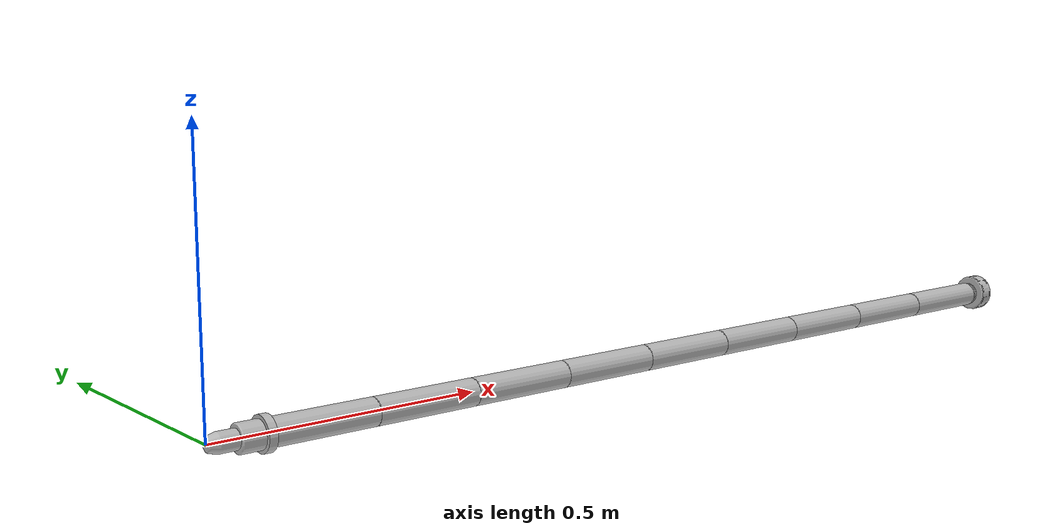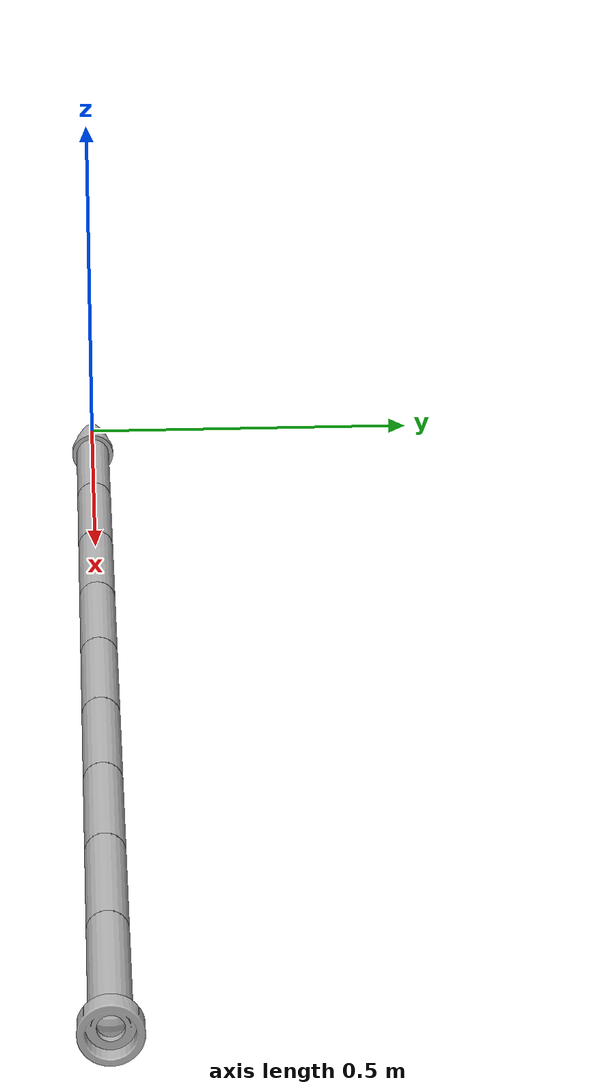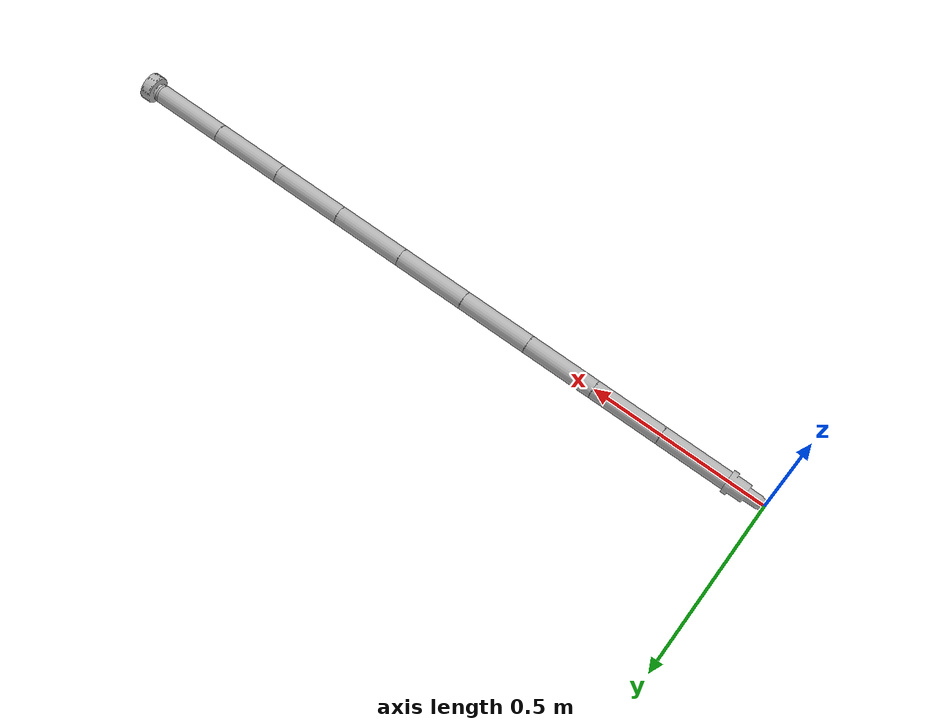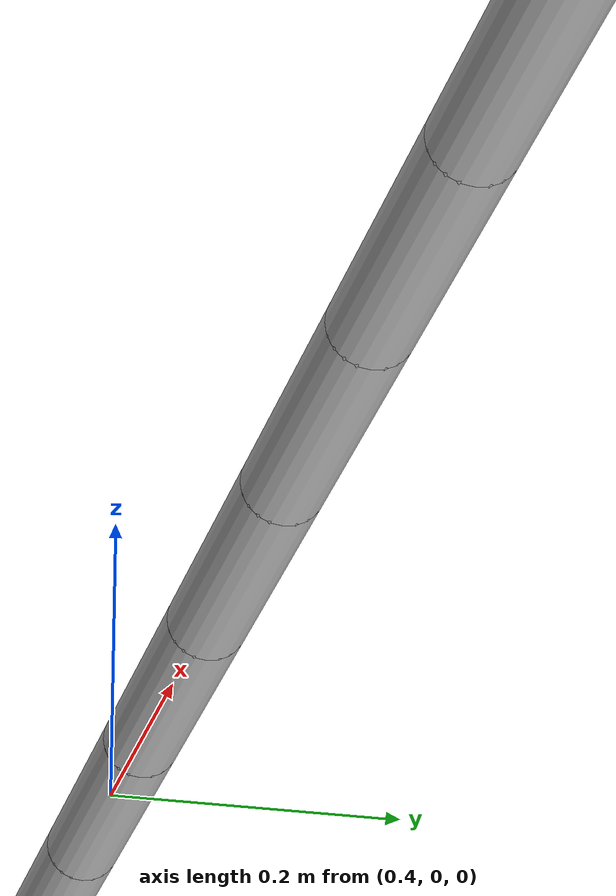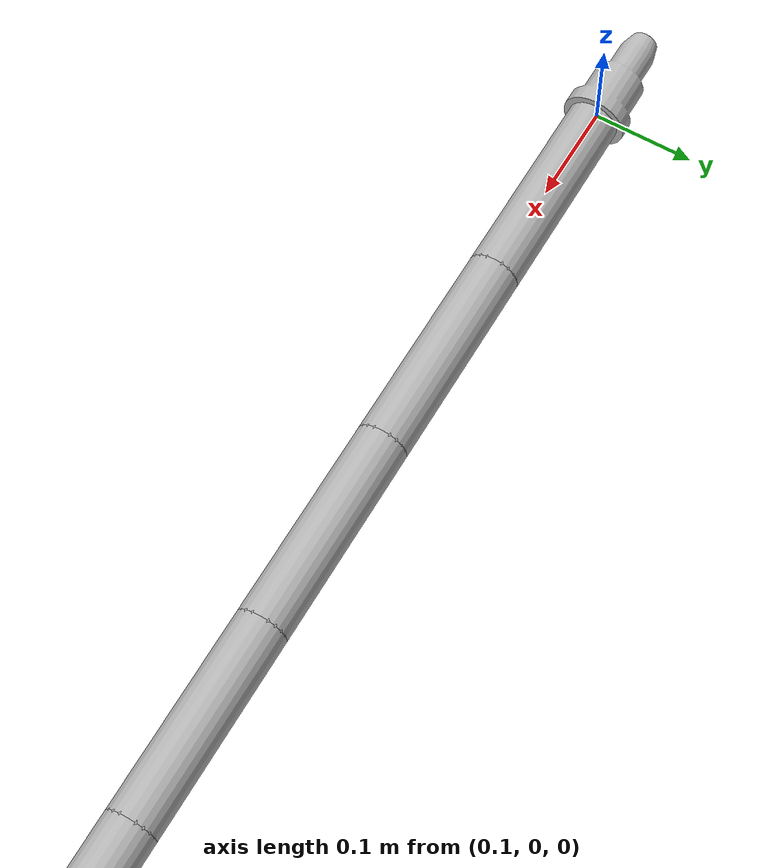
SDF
<sdf version="1.3">
    <model name="fire_hose_long">
        <link name="nozzle">
            <gravity>false</gravity>
            <pose>0.000000 0.000000 0.000000 0.000000 -0.000000 0.000000</pose>
            <inertial>
                <pose>0.000000 0.000000 0.000000 0.000000 -0.000000 0.000000</pose>
                <mass>0.100000</mass>
                <inertia>
                    <ixx>0.010000</ixx>
                    <ixy>0.000000</ixy>
                    <ixz>0.000000</ixz>
                    <iyy>0.010000</iyy>
                    <iyz>0.000000</iyz>
                    <izz>0.010000</izz>
                </inertia>
            </inertial>
            <collision name="nozzle_collision_simple">
                <pose>0.050000 0.000000 0.000000 0.000000 1.570790 0.000000</pose>
                <geometry>
                    <cylinder>
                        <length>0.10</length>
                        <radius>0.03</radius>
                    </cylinder>
                </geometry>
            </collision>
            <visual name="nozzle_vis">
                <pose>-0.000000 0.000000 0.000000 0.000000 -0.000000 0.000000</pose>
                <geometry>
                    <mesh>
                        <scale>0.002540 0.002540 0.002540</scale>
                        <uri>model://fire_hose_long/meshes/nozzle.stl</uri>
                    </mesh>
                </geometry>
            </visual>
            <velocity_decay />
        </link>
        <link name="sphere_01">
            <gravity>false</gravity>
            <pose>0.100000 0.000000 0.000000 0.000000 -0.000000 0.000000</pose>
            <inertial>
                <pose>0.000000 0.000000 0.000000 0.000000 -0.000000 0.000000</pose>
                <mass>0.100000</mass>
                <inertia>
                    <ixx>0.010000</ixx>
                    <ixy>0.000000</ixy>
                    <ixz>0.000000</ixz>
                    <iyy>0.010000</iyy>
                    <iyz>0.000000</iyz>
                    <izz>0.010000</izz>
                </inertia>
            </inertial>
            <collision name="sphere_01_collision">
                <pose>0.000000 0.000000 0.000000 0.000000 -0.000000 0.000000</pose>
                <geometry>
                    <sphere>
                        <radius>0.025000</radius>
                    </sphere>
                </geometry>
            </collision>
            <visual name="sphere_01_vis">
                <pose>0.000000 0.000000 0.000000 0.000000 -0.000000 0.000000</pose>
                <geometry>
                    <sphere>
                        <radius>0.025000</radius>
                    </sphere>
                </geometry>
            </visual>
            <velocity_decay />
        </link>
        <joint name="joint_01_1" type="revolute">
            <child>sphere_01</child>
            <parent>nozzle</parent>
            <axis>
                <xyz>0.000000 0.000000 1.000000</xyz>
                <limit>
                    <lower>-1.570800</lower>
                    <upper>1.570800</upper>
                </limit>
                <dynamics />
            </axis>
        </joint>
        <link name="link_01">
            <gravity>false</gravity>
            <pose>0.100000 0.000000 0.000000 0.000000 -0.000000 0.000000</pose>
            <inertial>
                <pose>0.000000 0.000000 0.000000 0.000000 -0.000000 0.000000</pose>
                <mass>0.100000</mass>
                <inertia>
                    <ixx>0.010000</ixx>
                    <ixy>0.000000</ixy>
                    <ixz>0.000000</ixz>
                    <iyy>0.010000</iyy>
                    <iyz>0.000000</iyz>
                    <izz>0.010000</izz>
                </inertia>
            </inertial>
            <visual name="link_01_vis">
                <pose>0.100000 0.000000 0.000000 0.000000 1.570790 0.000000</pose>
                <geometry>
                    <cylinder>
                        <length>0.200000</length>
                        <radius>0.025000</radius>
                    </cylinder>
                </geometry>
            </visual>
            <velocity_decay />
        </link>
        <joint name="joint_01_2" type="revolute">
            <child>link_01</child>
            <parent>sphere_01</parent>
            <axis>
                <xyz>0.000000 1.000000 0.000000</xyz>
                <limit>
                    <lower>-1.570800</lower>
                    <upper>1.570800</upper>
                </limit>
                <dynamics />
            </axis>
        </joint>
        <link name="sphere_02">
            <gravity>false</gravity>
            <pose>0.300000 0.000000 0.000000 0.000000 -0.000000 0.000000</pose>
            <inertial>
                <pose>0.000000 0.000000 0.000000 0.000000 -0.000000 0.000000</pose>
                <mass>0.100000</mass>
                <inertia>
                    <ixx>0.010000</ixx>
                    <ixy>0.000000</ixy>
                    <ixz>0.000000</ixz>
                    <iyy>0.010000</iyy>
                    <iyz>0.000000</iyz>
                    <izz>0.010000</izz>
                </inertia>
            </inertial>
            <collision name="sphere_02_collision">
                <pose>0.000000 0.000000 0.000000 0.000000 -0.000000 0.000000</pose>
                <geometry>
                    <sphere>
                        <radius>0.025000</radius>
                    </sphere>
                </geometry>
            </collision>
            <visual name="sphere_02_vis">
                <pose>0.000000 0.000000 0.000000 0.000000 -0.000000 0.000000</pose>
                <geometry>
                    <sphere>
                        <radius>0.025000</radius>
                    </sphere>
                </geometry>
            </visual>
            <velocity_decay />
        </link>
        <joint name="joint_02_1" type="revolute">
            <child>sphere_02</child>
            <parent>link_01</parent>
            <axis>
                <xyz>0.000000 0.000000 1.000000</xyz>
                <limit>
                    <lower>-1.570800</lower>
                    <upper>1.570800</upper>
                </limit>
                <dynamics />
            </axis>
        </joint>
        <link name="link_02">
            <gravity>false</gravity>
            <pose>0.300000 0.000000 0.000000 0.000000 -0.000000 0.000000</pose>
            <inertial>
                <pose>0.000000 0.000000 0.000000 0.000000 -0.000000 0.000000</pose>
                <mass>0.100000</mass>
                <inertia>
                    <ixx>0.010000</ixx>
                    <ixy>0.000000</ixy>
                    <ixz>0.000000</ixz>
                    <iyy>0.010000</iyy>
                    <iyz>0.000000</iyz>
                    <izz>0.010000</izz>
                </inertia>
            </inertial>
            <visual name="link_02_vis">
                <pose>0.100000 0.000000 0.000000 0.000000 1.570790 0.000000</pose>
                <geometry>
                    <cylinder>
                        <length>0.200000</length>
                        <radius>0.025000</radius>
                    </cylinder>
                </geometry>
            </visual>
            <velocity_decay />
        </link>
        <joint name="joint_02_2" type="revolute">
            <child>link_02</child>
            <parent>sphere_02</parent>
            <axis>
                <xyz>0.000000 1.000000 0.000000</xyz>
                <limit>
                    <lower>-1.570800</lower>
                    <upper>1.570800</upper>
                </limit>
                <dynamics />
            </axis>
        </joint>
        <link name="sphere_03">
            <gravity>false</gravity>
            <pose>0.500000 0.000000 0.000000 0.000000 -0.000000 0.000000</pose>
            <inertial>
                <pose>0.000000 0.000000 0.000000 0.000000 -0.000000 0.000000</pose>
                <mass>0.100000</mass>
                <inertia>
                    <ixx>0.010000</ixx>
                    <ixy>0.000000</ixy>
                    <ixz>0.000000</ixz>
                    <iyy>0.010000</iyy>
                    <iyz>0.000000</iyz>
                    <izz>0.010000</izz>
                </inertia>
            </inertial>
            <collision name="sphere_03_collision">
                <pose>0.000000 0.000000 0.000000 0.000000 -0.000000 0.000000</pose>
                <geometry>
                    <sphere>
                        <radius>0.025000</radius>
                    </sphere>
                </geometry>
            </collision>
            <visual name="sphere_03_vis">
                <pose>0.000000 0.000000 0.000000 0.000000 -0.000000 0.000000</pose>
                <geometry>
                    <sphere>
                        <radius>0.025000</radius>
                    </sphere>
                </geometry>
            </visual>
            <velocity_decay />
        </link>
        <joint name="joint_03_1" type="revolute">
            <child>sphere_03</child>
            <parent>link_02</parent>
            <axis>
                <xyz>0.000000 0.000000 1.000000</xyz>
                <limit>
                    <lower>-1.570800</lower>
                    <upper>1.570800</upper>
                </limit>
                <dynamics />
            </axis>
        </joint>
        <link name="link_03">
            <gravity>false</gravity>
            <pose>0.500000 0.000000 0.000000 0.000000 -0.000000 0.000000</pose>
            <inertial>
                <pose>0.000000 0.000000 0.000000 0.000000 -0.000000 0.000000</pose>
                <mass>0.100000</mass>
                <inertia>
                    <ixx>0.010000</ixx>
                    <ixy>0.000000</ixy>
                    <ixz>0.000000</ixz>
                    <iyy>0.010000</iyy>
                    <iyz>0.000000</iyz>
                    <izz>0.010000</izz>
                </inertia>
            </inertial>
            <visual name="link_03_vis">
                <pose>0.100000 0.000000 0.000000 0.000000 1.570790 0.000000</pose>
                <geometry>
                    <cylinder>
                        <length>0.200000</length>
                        <radius>0.025000</radius>
                    </cylinder>
                </geometry>
            </visual>
            <velocity_decay />
        </link>
        <joint name="joint_03_2" type="revolute">
            <child>link_03</child>
            <parent>sphere_03</parent>
            <axis>
                <xyz>0.000000 1.000000 0.000000</xyz>
                <limit>
                    <lower>-1.570800</lower>
                    <upper>1.570800</upper>
                </limit>
                <dynamics />
            </axis>
        </joint>
        <link name="sphere_04">
            <gravity>false</gravity>
            <pose>0.700000 0.000000 0.000000 0.000000 -0.000000 0.000000</pose>
            <inertial>
                <pose>0.000000 0.000000 0.000000 0.000000 -0.000000 0.000000</pose>
                <mass>0.100000</mass>
                <inertia>
                    <ixx>0.010000</ixx>
                    <ixy>0.000000</ixy>
                    <ixz>0.000000</ixz>
                    <iyy>0.010000</iyy>
                    <iyz>0.000000</iyz>
                    <izz>0.010000</izz>
                </inertia>
            </inertial>
            <collision name="sphere_04_collision">
                <pose>0.000000 0.000000 0.000000 0.000000 -0.000000 0.000000</pose>
                <geometry>
                    <sphere>
                        <radius>0.025000</radius>
                    </sphere>
                </geometry>
            </collision>
            <visual name="sphere_04_vis">
                <pose>0.000000 0.000000 0.000000 0.000000 -0.000000 0.000000</pose>
                <geometry>
                    <sphere>
                        <radius>0.025000</radius>
                    </sphere>
                </geometry>
            </visual>
            <velocity_decay />
        </link>
        <joint name="joint_04_1" type="revolute">
            <child>sphere_04</child>
            <parent>link_03</parent>
            <axis>
                <xyz>0.000000 0.000000 1.000000</xyz>
                <limit>
                    <lower>-1.570800</lower>
                    <upper>1.570800</upper>
                </limit>
                <dynamics />
            </axis>
        </joint>
        <link name="link_04">
            <gravity>false</gravity>
            <pose>0.700000 0.000000 0.000000 0.000000 -0.000000 0.000000</pose>
            <inertial>
                <pose>0.000000 0.000000 0.000000 0.000000 -0.000000 0.000000</pose>
                <mass>0.100000</mass>
                <inertia>
                    <ixx>0.010000</ixx>
                    <ixy>0.000000</ixy>
                    <ixz>0.000000</ixz>
                    <iyy>0.010000</iyy>
                    <iyz>0.000000</iyz>
                    <izz>0.010000</izz>
                </inertia>
            </inertial>
            <visual name="link_04_vis">
                <pose>0.100000 0.000000 0.000000 0.000000 1.570790 0.000000</pose>
                <geometry>
                    <cylinder>
                        <length>0.200000</length>
                        <radius>0.025000</radius>
                    </cylinder>
                </geometry>
            </visual>
            <velocity_decay />
        </link>
        <joint name="joint_04_2" type="revolute">
            <child>link_04</child>
            <parent>sphere_04</parent>
            <axis>
                <xyz>0.000000 1.000000 0.000000</xyz>
                <limit>
                    <lower>-1.570800</lower>
                    <upper>1.570800</upper>
                </limit>
                <dynamics />
            </axis>
        </joint>
        <link name="sphere_05">
            <gravity>false</gravity>
            <pose>0.900000 0.000000 0.000000 0.000000 -0.000000 0.000000</pose>
            <inertial>
                <pose>0.000000 0.000000 0.000000 0.000000 -0.000000 0.000000</pose>
                <mass>0.100000</mass>
                <inertia>
                    <ixx>0.010000</ixx>
                    <ixy>0.000000</ixy>
                    <ixz>0.000000</ixz>
                    <iyy>0.010000</iyy>
                    <iyz>0.000000</iyz>
                    <izz>0.010000</izz>
                </inertia>
            </inertial>
            <collision name="sphere_05_collision">
                <pose>0.000000 0.000000 0.000000 0.000000 -0.000000 0.000000</pose>
                <geometry>
                    <sphere>
                        <radius>0.025000</radius>
                    </sphere>
                </geometry>
            </collision>
            <visual name="sphere_05_vis">
                <pose>0.000000 0.000000 0.000000 0.000000 -0.000000 0.000000</pose>
                <geometry>
                    <sphere>
                        <radius>0.025000</radius>
                    </sphere>
                </geometry>
            </visual>
            <velocity_decay />
        </link>
        <joint name="joint_05_1" type="revolute">
            <child>sphere_05</child>
            <parent>link_04</parent>
            <axis>
                <xyz>0.000000 0.000000 1.000000</xyz>
                <limit>
                    <lower>-1.570800</lower>
                    <upper>1.570800</upper>
                </limit>
                <dynamics />
            </axis>
        </joint>
        <link name="link_05">
            <gravity>false</gravity>
            <pose>0.900000 0.000000 0.000000 0.000000 -0.000000 0.000000</pose>
            <inertial>
                <pose>0.000000 0.000000 0.000000 0.000000 -0.000000 0.000000</pose>
                <mass>0.100000</mass>
                <inertia>
                    <ixx>0.010000</ixx>
                    <ixy>0.000000</ixy>
                    <ixz>0.000000</ixz>
                    <iyy>0.010000</iyy>
                    <iyz>0.000000</iyz>
                    <izz>0.010000</izz>
                </inertia>
            </inertial>
            <visual name="link_05_vis">
                <pose>0.100000 0.000000 0.000000 0.000000 1.570790 0.000000</pose>
                <geometry>
                    <cylinder>
                        <length>0.200000</length>
                        <radius>0.025000</radius>
                    </cylinder>
                </geometry>
            </visual>
            <velocity_decay />
        </link>
        <joint name="joint_05_2" type="revolute">
            <child>link_05</child>
            <parent>sphere_05</parent>
            <axis>
                <xyz>0.000000 1.000000 0.000000</xyz>
                <limit>
                    <lower>-1.570800</lower>
                    <upper>1.570800</upper>
                </limit>
                <dynamics />
            </axis>
        </joint>
        <link name="sphere_06">
            <gravity>false</gravity>
            <pose>1.100000 0.000000 0.000000 0.000000 -0.000000 0.000000</pose>
            <inertial>
                <pose>0.000000 0.000000 0.000000 0.000000 -0.000000 0.000000</pose>
                <mass>0.100000</mass>
                <inertia>
                    <ixx>0.010000</ixx>
                    <ixy>0.000000</ixy>
                    <ixz>0.000000</ixz>
                    <iyy>0.010000</iyy>
                    <iyz>0.000000</iyz>
                    <izz>0.010000</izz>
                </inertia>
            </inertial>
            <collision name="sphere_06_collision">
                <pose>0.000000 0.000000 0.000000 0.000000 -0.000000 0.000000</pose>
                <geometry>
                    <sphere>
                        <radius>0.025000</radius>
                    </sphere>
                </geometry>
            </collision>
            <visual name="sphere_06_vis">
                <pose>0.000000 0.000000 0.000000 0.000000 -0.000000 0.000000</pose>
                <geometry>
                    <sphere>
                        <radius>0.025000</radius>
                    </sphere>
                </geometry>
            </visual>
            <velocity_decay />
        </link>
        <joint name="joint_06_1" type="revolute">
            <child>sphere_06</child>
            <parent>link_05</parent>
            <axis>
                <xyz>0.000000 0.000000 1.000000</xyz>
                <limit>
                    <lower>-1.570800</lower>
                    <upper>1.570800</upper>
                </limit>
                <dynamics />
            </axis>
        </joint>
        <link name="link_06">
            <gravity>false</gravity>
            <pose>1.100000 0.000000 0.000000 0.000000 -0.000000 0.000000</pose>
            <inertial>
                <pose>0.000000 0.000000 0.000000 0.000000 -0.000000 0.000000</pose>
                <mass>0.100000</mass>
                <inertia>
                    <ixx>0.010000</ixx>
                    <ixy>0.000000</ixy>
                    <ixz>0.000000</ixz>
                    <iyy>0.010000</iyy>
                    <iyz>0.000000</iyz>
                    <izz>0.010000</izz>
                </inertia>
            </inertial>
            <visual name="link_06_vis">
                <pose>0.100000 0.000000 0.000000 0.000000 1.570790 0.000000</pose>
                <geometry>
                    <cylinder>
                        <length>0.200000</length>
                        <radius>0.025000</radius>
                    </cylinder>
                </geometry>
            </visual>
            <velocity_decay />
        </link>
        <joint name="joint_06_2" type="revolute">
            <child>link_06</child>
            <parent>sphere_06</parent>
            <axis>
                <xyz>0.000000 1.000000 0.000000</xyz>
                <limit>
                    <lower>-1.570800</lower>
                    <upper>1.570800</upper>
                </limit>
                <dynamics />
            </axis>
        </joint>
        <link name="sphere_07">
            <gravity>false</gravity>
            <pose>1.300000 0.000000 0.000000 0.000000 -0.000000 0.000000</pose>
            <inertial>
                <pose>0.000000 0.000000 0.000000 0.000000 -0.000000 0.000000</pose>
                <mass>0.100000</mass>
                <inertia>
                    <ixx>0.010000</ixx>
                    <ixy>0.000000</ixy>
                    <ixz>0.000000</ixz>
                    <iyy>0.010000</iyy>
                    <iyz>0.000000</iyz>
                    <izz>0.010000</izz>
                </inertia>
            </inertial>
            <collision name="sphere_07_collision">
                <pose>0.000000 0.000000 0.000000 0.000000 -0.000000 0.000000</pose>
                <geometry>
                    <sphere>
                        <radius>0.025000</radius>
                    </sphere>
                </geometry>
            </collision>
            <visual name="sphere_07_vis">
                <pose>0.000000 0.000000 0.000000 0.000000 -0.000000 0.000000</pose>
                <geometry>
                    <sphere>
                        <radius>0.025000</radius>
                    </sphere>
                </geometry>
            </visual>
            <velocity_decay />
        </link>
        <joint name="joint_07_1" type="revolute">
            <child>sphere_07</child>
            <parent>link_06</parent>
            <axis>
                <xyz>0.000000 0.000000 1.000000</xyz>
                <limit>
                    <lower>-1.570800</lower>
                    <upper>1.570800</upper>
                </limit>
                <dynamics />
            </axis>
        </joint>
        <link name="link_07">
            <gravity>false</gravity>
            <pose>1.300000 0.000000 0.000000 0.000000 -0.000000 0.000000</pose>
            <inertial>
                <pose>0.000000 0.000000 0.000000 0.000000 -0.000000 0.000000</pose>
                <mass>0.100000</mass>
                <inertia>
                    <ixx>0.010000</ixx>
                    <ixy>0.000000</ixy>
                    <ixz>0.000000</ixz>
                    <iyy>0.010000</iyy>
                    <iyz>0.000000</iyz>
                    <izz>0.010000</izz>
                </inertia>
            </inertial>
            <visual name="link_07_vis">
                <pose>0.100000 0.000000 0.000000 0.000000 1.570790 0.000000</pose>
                <geometry>
                    <cylinder>
                        <length>0.200000</length>
                        <radius>0.025000</radius>
                    </cylinder>
                </geometry>
            </visual>
            <velocity_decay />
        </link>
        <joint name="joint_07_2" type="revolute">
            <child>link_07</child>
            <parent>sphere_07</parent>
            <axis>
                <xyz>0.000000 1.000000 0.000000</xyz>
                <limit>
                    <lower>-1.570800</lower>
                    <upper>1.570800</upper>
                </limit>
                <dynamics />
            </axis>
        </joint>
        <link name="sphere_08">
            <gravity>false</gravity>
            <pose>1.500000 0.000000 0.000000 0.000000 -0.000000 0.000000</pose>
            <inertial>
                <pose>0.000000 0.000000 0.000000 0.000000 -0.000000 0.000000</pose>
                <mass>0.100000</mass>
                <inertia>
                    <ixx>0.010000</ixx>
                    <ixy>0.000000</ixy>
                    <ixz>0.000000</ixz>
                    <iyy>0.010000</iyy>
                    <iyz>0.000000</iyz>
                    <izz>0.010000</izz>
                </inertia>
            </inertial>
            <collision name="sphere_08_collision">
                <pose>0.000000 0.000000 0.000000 0.000000 -0.000000 0.000000</pose>
                <geometry>
                    <sphere>
                        <radius>0.025000</radius>
                    </sphere>
                </geometry>
            </collision>
            <visual name="sphere_08_vis">
                <pose>0.000000 0.000000 0.000000 0.000000 -0.000000 0.000000</pose>
                <geometry>
                    <sphere>
                        <radius>0.025000</radius>
                    </sphere>
                </geometry>
            </visual>
            <velocity_decay />
        </link>
        <joint name="joint_08_1" type="revolute">
            <child>sphere_08</child>
            <parent>link_07</parent>
            <axis>
                <xyz>0.000000 0.000000 1.000000</xyz>
                <limit>
                    <lower>-1.570800</lower>
                    <upper>1.570800</upper>
                </limit>
                <dynamics />
            </axis>
        </joint>
        <link name="link_08">
            <gravity>false</gravity>
            <pose>1.500000 0.000000 0.000000 0.000000 -0.000000 0.000000</pose>
            <inertial>
                <pose>0.000000 0.000000 0.000000 0.000000 -0.000000 0.000000</pose>
                <mass>0.100000</mass>
                <inertia>
                    <ixx>0.010000</ixx>
                    <ixy>0.000000</ixy>
                    <ixz>0.000000</ixz>
                    <iyy>0.010000</iyy>
                    <iyz>0.000000</iyz>
                    <izz>0.010000</izz>
                </inertia>
            </inertial>
            <visual name="link_08_vis">
                <pose>0.100000 0.000000 0.000000 0.000000 1.570790 0.000000</pose>
                <geometry>
                    <cylinder>
                        <length>0.200000</length>
                        <radius>0.025000</radius>
                    </cylinder>
                </geometry>
            </visual>
            <velocity_decay />
        </link>
        <joint name="joint_08_2" type="revolute">
            <child>link_08</child>
            <parent>sphere_08</parent>
            <axis>
                <xyz>0.000000 1.000000 0.000000</xyz>
                <limit>
                    <lower>-1.570800</lower>
                    <upper>1.570800</upper>
                </limit>
                <dynamics />
            </axis>
        </joint>
        <link name="sphere_09">
            <gravity>false</gravity>
            <pose>1.700000 0.000000 0.000000 0.000000 -0.000000 0.000000</pose>
            <inertial>
                <pose>0.000000 0.000000 0.000000 0.000000 -0.000000 0.000000</pose>
                <mass>0.100000</mass>
                <inertia>
                    <ixx>0.010000</ixx>
                    <ixy>0.000000</ixy>
                    <ixz>0.000000</ixz>
                    <iyy>0.010000</iyy>
                    <iyz>0.000000</iyz>
                    <izz>0.010000</izz>
                </inertia>
            </inertial>
            <collision name="sphere_09_collision">
                <pose>0.000000 0.000000 0.000000 0.000000 -0.000000 0.000000</pose>
                <geometry>
                    <sphere>
                        <radius>0.025000</radius>
                    </sphere>
                </geometry>
            </collision>
            <visual name="sphere_09_vis">
                <pose>0.000000 0.000000 0.000000 0.000000 -0.000000 0.000000</pose>
                <geometry>
                    <sphere>
                        <radius>0.025000</radius>
                    </sphere>
                </geometry>
            </visual>
            <velocity_decay />
        </link>
        <joint name="joint_09_1" type="revolute">
            <child>sphere_09</child>
            <parent>link_08</parent>
            <axis>
                <xyz>0.000000 0.000000 1.000000</xyz>
                <limit>
                    <lower>-1.570800</lower>
                    <upper>1.570800</upper>
                </limit>
                <dynamics />
            </axis>
        </joint>
        <link name="link_09">
            <gravity>false</gravity>
            <pose>1.700000 0.000000 0.000000 0.000000 -0.000000 0.000000</pose>
            <inertial>
                <pose>0.000000 0.000000 0.000000 0.000000 -0.000000 0.000000</pose>
                <mass>0.100000</mass>
                <inertia>
                    <ixx>0.010000</ixx>
                    <ixy>0.000000</ixy>
                    <ixz>0.000000</ixz>
                    <iyy>0.010000</iyy>
                    <iyz>0.000000</iyz>
                    <izz>0.010000</izz>
                </inertia>
            </inertial>
            <visual name="link_09_vis">
                <pose>0.100000 0.000000 0.000000 0.000000 1.570790 0.000000</pose>
                <geometry>
                    <cylinder>
                        <length>0.200000</length>
                        <radius>0.025000</radius>
                    </cylinder>
                </geometry>
            </visual>
            <velocity_decay />
        </link>
        <joint name="joint_09_2" type="revolute">
            <child>link_09</child>
            <parent>sphere_09</parent>
            <axis>
                <xyz>0.000000 1.000000 0.000000</xyz>
                <limit>
                    <lower>-1.570800</lower>
                    <upper>1.570800</upper>
                </limit>
                <dynamics />
            </axis>
        </joint>
        <link name="sphere_10">
            <gravity>false</gravity>
            <pose>1.900000 0.000000 0.000000 0.000000 -0.000000 0.000000</pose>
            <inertial>
                <pose>0.000000 0.000000 0.000000 0.000000 -0.000000 0.000000</pose>
                <mass>0.100000</mass>
                <inertia>
                    <ixx>0.010000</ixx>
                    <ixy>0.000000</ixy>
                    <ixz>0.000000</ixz>
                    <iyy>0.010000</iyy>
                    <iyz>0.000000</iyz>
                    <izz>0.010000</izz>
                </inertia>
            </inertial>
            <collision name="sphere_10_collision">
                <pose>0.000000 0.000000 0.000000 0.000000 -0.000000 0.000000</pose>
                <geometry>
                    <sphere>
                        <radius>0.025000</radius>
                    </sphere>
                </geometry>
            </collision>
            <visual name="sphere_10_vis">
                <pose>0.000000 0.000000 0.000000 0.000000 -0.000000 0.000000</pose>
                <geometry>
                    <sphere>
                        <radius>0.025000</radius>
                    </sphere>
                </geometry>
            </visual>
            <velocity_decay />
        </link>
        <joint name="joint_10_1" type="revolute">
            <child>sphere_10</child>
            <parent>link_09</parent>
            <axis>
                <xyz>0.000000 0.000000 1.000000</xyz>
                <limit>
                    <lower>-1.570800</lower>
                    <upper>1.570800</upper>
                </limit>
                <dynamics />
            </axis>
        </joint>
        <link name="coupling_base">
            <pose>1.900000 0.000000 0.000000 0.000000 -0.000000 0.000000</pose>
            <inertial>
                <pose>0.000000 0.000000 0.000000 0.000000 -0.000000 0.000000</pose>
                <mass>0.100000</mass>
                <inertia>
                    <ixx>0.010000</ixx>
                    <ixy>0.000000</ixy>
                    <ixz>0.000000</ixz>
                    <iyy>0.010000</iyy>
                    <iyz>0.000000</iyz>
                    <izz>0.010000</izz>
                </inertia>
            </inertial>
            <velocity_decay />
        </link>
        <joint name="joint_20_2" type="revolute">
            <child>coupling_base</child>
            <parent>sphere_10</parent>
            <axis>
                <xyz>0.000000 1.000000 0.000000</xyz>
                <limit>
                    <lower>-1.570800</lower>
                    <upper>1.570800</upper>
                </limit>
                <dynamics />
            </axis>
        </joint>
        <link name="coupling">
            <pose>1.900000 0.000000 0.000000 0.000000 -0.000000 0.000000</pose>
            <inertial>
                <pose>0.000000 0.000000 0.000000 0.000000 -0.000000 0.000000</pose>
                <mass>0.100000</mass>
                <inertia>
                    <ixx>0.010000</ixx>
                    <ixy>0.000000</ixy>
                    <ixz>0.000000</ixz>
                    <iyy>0.010000</iyy>
                    <iyz>0.000000</iyz>
                    <izz>0.010000</izz>
                </inertia>
            </inertial>
            <visual name="coupling_mesh_visual">
                <pose>0.000000 0.000000 0.000000 0.000000 -0.000000 0.000000</pose>
                <geometry>
                    <mesh>
                        <scale>0.001000 0.001000 0.001000</scale>
                        <uri>model://fire_hose_long/meshes/coupling.stl</uri>
                    </mesh>
                </geometry>
            </visual>
            <collision name="coupling_collision">
                <pose>0.030000 0.000000 0.000000 0.000000 1.570790 0.000000</pose>
                <geometry>
                    <cylinder>
                        <length>0.03</length>
                        <radius>0.04</radius>
                    </cylinder>
                </geometry>
            </collision>
            <velocity_decay>
                <linear>0.005</linear>
                <angular>0.005</angular>
            </velocity_decay>
        </link>
        <joint name="joint_20_3" type="revolute">
            <child>coupling</child>
            <parent>coupling_base</parent>
            <axis>
                <xyz>1.000000 0.000000 0.000000</xyz>
            </axis>
        </joint>
        <plugin name="fire_hose_long_plugin" filename="libDRCFirehosePlugin.so">
            <coupling_link>coupling</coupling_link>
            <spout_model>standpipe</spout_model>
            <spout_link>standpipe</spout_link>
            <thread_pitch>-1000</thread_pitch>
            <coupling_relative_pose>1.17038e-05 -0.125623 0.35 -0.0412152 -1.57078 1.61199</coupling_relative_pose>
        </plugin>
    </model>
</sdf>
